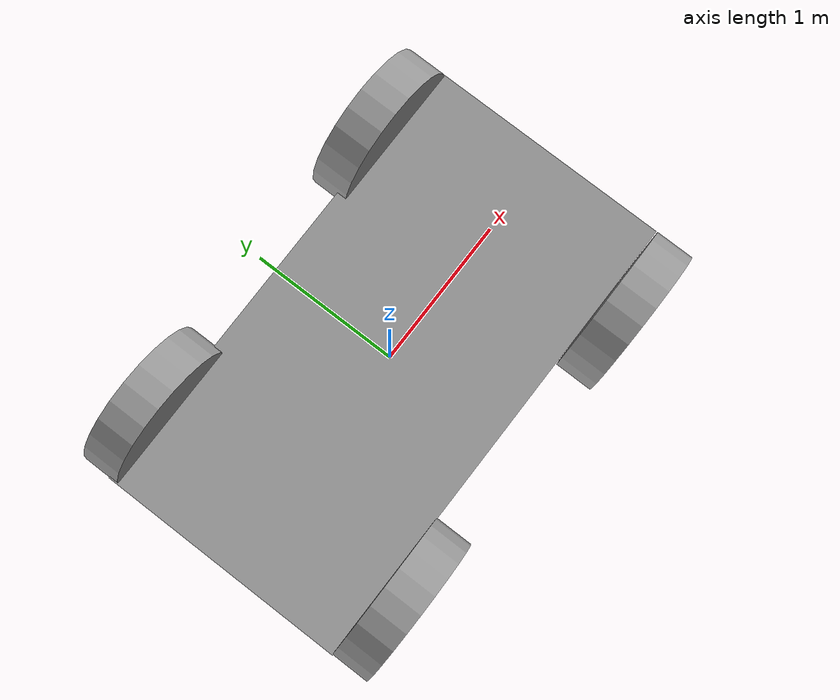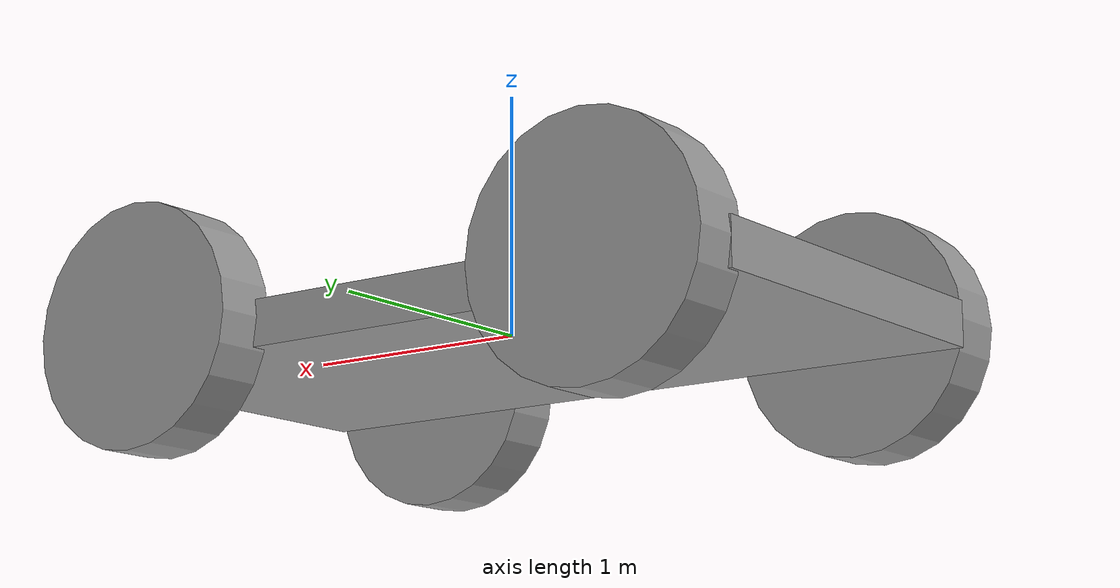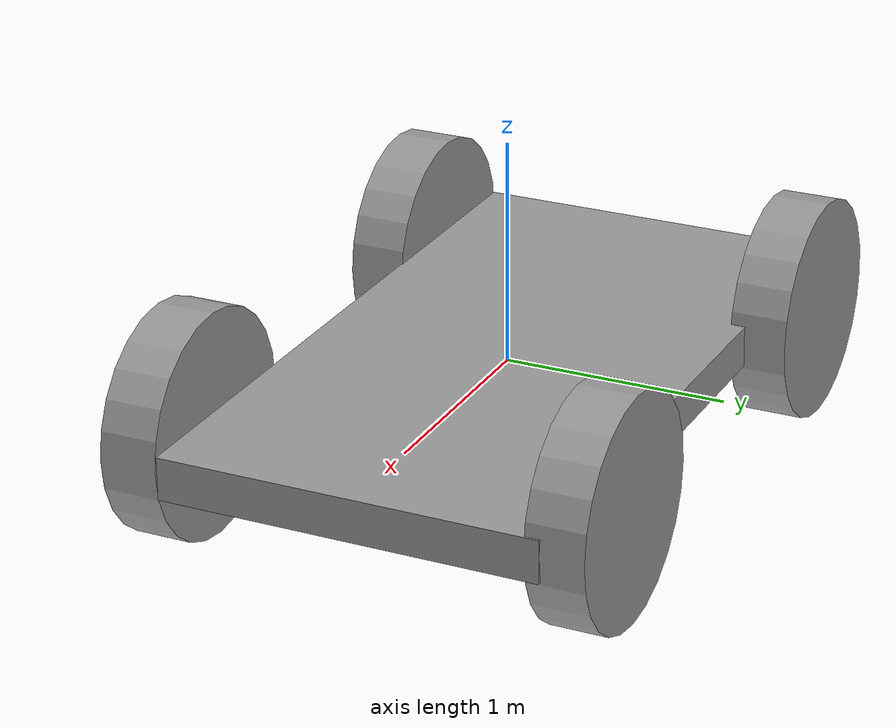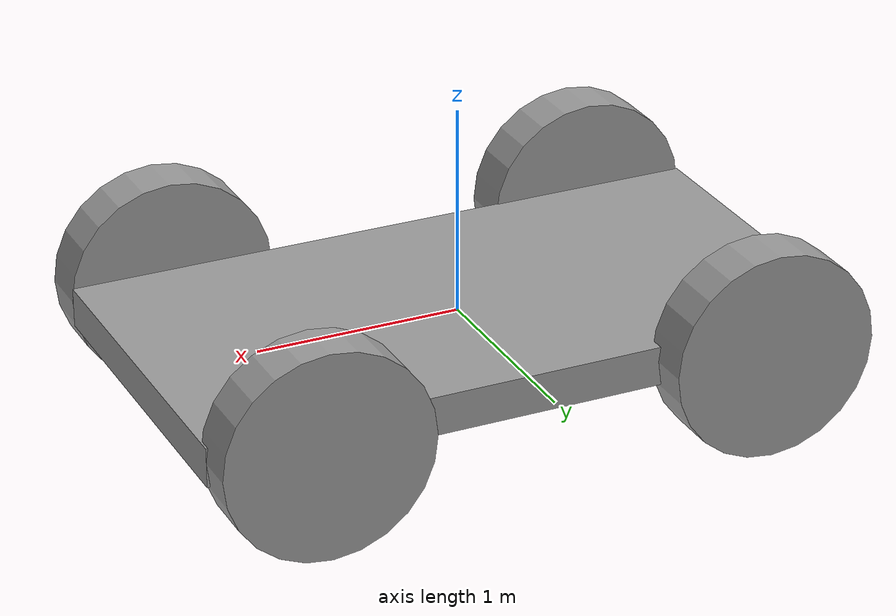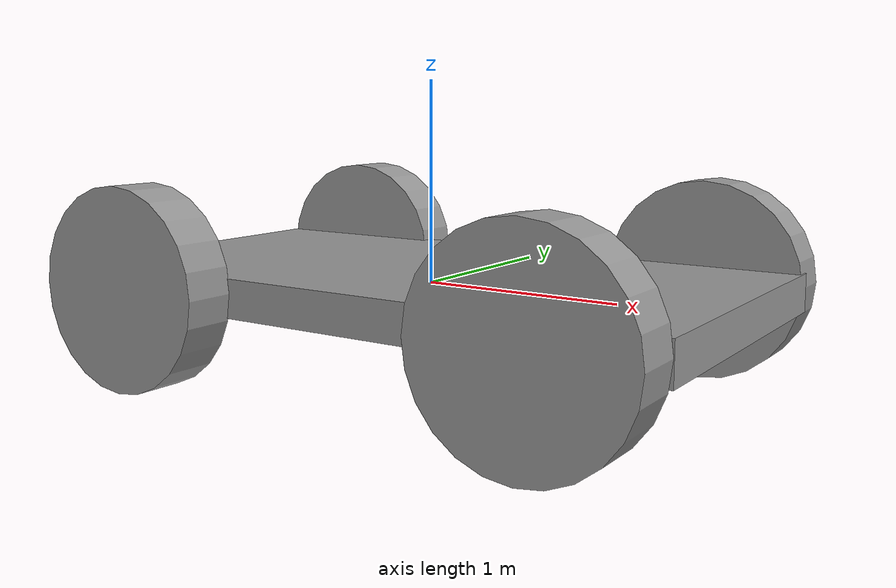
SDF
<?xml version='1.0'?>
<sdf version='1.7'>
  <model name='AC_TestModel_2'>
    <link name='link_0'>
      <inertial>
        <mass>1.01001</mass>
        <inertia>
          <ixx>0.2398</ixx>
          <ixy>0</ixy>
          <ixz>0</ixz>
          <iyy>0.853078</iyy>
          <iyz>0</iyz>
          <izz>1.08683</izz>
        </inertia>
        <pose>0 0 0 0 -0 0</pose>
      </inertial>
      <pose>1e-06 0.026607 -0.018103 0 -0 0</pose>
      <visual name='visual'>
        <pose>0 0 0 0 -0 0</pose>
        <geometry>
          <box>
            <size>3.17798 1.67725 0.189484</size>
          </box>
        </geometry>
        <material>
          <lighting>1</lighting>
          <script>
            <uri>file://media/materials/scripts/gazebo.material</uri>
            <name>Gazebo/Grey</name>
          </script>
          <shader type='pixel'/>
          <emissive>0 0 0 1</emissive>
        </material>
        <transparency>0</transparency>
        <cast_shadows>1</cast_shadows>
      </visual>
      <collision name='collision'>
        <laser_retro>0</laser_retro>
        <max_contacts>10</max_contacts>
        <pose>0 0 0 0 -0 0</pose>
        <geometry>
          <box>
            <size>3.17798 1.67725 0.189484</size>
          </box>
        </geometry>
        <surface>
          <friction>
            <ode>
              <mu>1</mu>
              <mu2>1</mu2>
              <fdir1>0 0 0</fdir1>
              <slip1>0</slip1>
              <slip2>0</slip2>
            </ode>
            <torsional>
              <coefficient>1</coefficient>
              <patch_radius>0</patch_radius>
              <surface_radius>0</surface_radius>
              <use_patch_radius>1</use_patch_radius>
              <ode>
                <slip>0</slip>
              </ode>
            </torsional>
          </friction>
          <bounce>
            <restitution_coefficient>0</restitution_coefficient>
            <threshold>1e+06</threshold>
          </bounce>
          <contact>
            <collide_without_contact>0</collide_without_contact>
            <collide_without_contact_bitmask>1</collide_without_contact_bitmask>
            <collide_bitmask>1</collide_bitmask>
            <ode>
              <soft_cfm>0</soft_cfm>
              <soft_erp>0.2</soft_erp>
              <kp>1e+13</kp>
              <kd>1</kd>
              <max_vel>0.01</max_vel>
              <min_depth>0</min_depth>
            </ode>
            <bullet>
              <split_impulse>1</split_impulse>
              <split_impulse_penetration_threshold>-0.01</split_impulse_penetration_threshold>
              <soft_cfm>0</soft_cfm>
              <soft_erp>0.2</soft_erp>
              <kp>1e+13</kp>
              <kd>1</kd>
            </bullet>
          </contact>
        </surface>
      </collision>
    </link>
    <link name='link_1'>
      <inertial>
        <mass>0.253765</mass>
        <inertia>
          <ixx>0.0172222</ixx>
          <ixy>0</ixy>
          <ixz>0</ixz>
          <iyy>0.0172222</iyy>
          <iyz>0</iyz>
          <izz>0.0317207</izz>
        </inertia>
        <pose>0 0 0 0 -0 0</pose>
      </inertial>
      <pose>1.08899 -0.946693 0.004526 -1.5708 0 0</pose>
      <visual name='visual'>
        <pose>0 0 0 0 -0 0</pose>
        <geometry>
          <cylinder>
            <radius>0.5</radius>
            <length>0.253767</length>
          </cylinder>
        </geometry>
        <material>
          <lighting>1</lighting>
          <script>
            <uri>file://media/materials/scripts/gazebo.material</uri>
            <name>Gazebo/Grey</name>
          </script>
          <shader type='pixel'/>
          <emissive>0 0 0 1</emissive>
        </material>
        <transparency>0</transparency>
        <cast_shadows>1</cast_shadows>
      </visual>
      <collision name='collision'>
        <laser_retro>0</laser_retro>
        <max_contacts>10</max_contacts>
        <pose>0 0 0 0 -0 0</pose>
        <geometry>
          <cylinder>
            <radius>0.5</radius>
            <length>0.253767</length>
          </cylinder>
        </geometry>
        <surface>
          <friction>
            <ode>
              <mu>1</mu>
              <mu2>1</mu2>
              <fdir1>0 0 0</fdir1>
              <slip1>0</slip1>
              <slip2>0</slip2>
            </ode>
            <torsional>
              <coefficient>1</coefficient>
              <patch_radius>0</patch_radius>
              <surface_radius>0</surface_radius>
              <use_patch_radius>1</use_patch_radius>
              <ode>
                <slip>0</slip>
              </ode>
            </torsional>
          </friction>
          <bounce>
            <restitution_coefficient>0</restitution_coefficient>
            <threshold>1e+06</threshold>
          </bounce>
          <contact>
            <collide_without_contact>0</collide_without_contact>
            <collide_without_contact_bitmask>1</collide_without_contact_bitmask>
            <collide_bitmask>1</collide_bitmask>
            <ode>
              <soft_cfm>0</soft_cfm>
              <soft_erp>0.2</soft_erp>
              <kp>1e+13</kp>
              <kd>1</kd>
              <max_vel>0.01</max_vel>
              <min_depth>0</min_depth>
            </ode>
            <bullet>
              <split_impulse>1</split_impulse>
              <split_impulse_penetration_threshold>-0.01</split_impulse_penetration_threshold>
              <soft_cfm>0</soft_cfm>
              <soft_erp>0.2</soft_erp>
              <kp>1e+13</kp>
              <kd>1</kd>
            </bullet>
          </contact>
        </surface>
      </collision>
    </link>
    <link name='link_1_clone'>
      <inertial>
        <mass>0.253765</mass>
        <inertia>
          <ixx>0.0172222</ixx>
          <ixy>0</ixy>
          <ixz>0</ixz>
          <iyy>0.0172222</iyy>
          <iyz>0</iyz>
          <izz>0.0317207</izz>
        </inertia>
        <pose>0 0 0 0 -0 0</pose>
      </inertial>
      <pose>1.08899 0.92683 0.004526 -1.5708 0 0</pose>
      <visual name='visual'>
        <pose>0 0 0 0 -0 0</pose>
        <geometry>
          <cylinder>
            <radius>0.5</radius>
            <length>0.253767</length>
          </cylinder>
        </geometry>
        <material>
          <lighting>1</lighting>
          <script>
            <uri>file://media/materials/scripts/gazebo.material</uri>
            <name>Gazebo/Grey</name>
          </script>
          <shader type='pixel'/>
          <emissive>0 0 0 1</emissive>
        </material>
        <transparency>0</transparency>
        <cast_shadows>1</cast_shadows>
      </visual>
      <collision name='collision'>
        <laser_retro>0</laser_retro>
        <max_contacts>10</max_contacts>
        <pose>0 0 0 0 -0 0</pose>
        <geometry>
          <cylinder>
            <radius>0.5</radius>
            <length>0.253767</length>
          </cylinder>
        </geometry>
        <surface>
          <friction>
            <ode>
              <mu>1</mu>
              <mu2>1</mu2>
              <fdir1>0 0 0</fdir1>
              <slip1>0</slip1>
              <slip2>0</slip2>
            </ode>
            <torsional>
              <coefficient>1</coefficient>
              <patch_radius>0</patch_radius>
              <surface_radius>0</surface_radius>
              <use_patch_radius>1</use_patch_radius>
              <ode>
                <slip>0</slip>
              </ode>
            </torsional>
          </friction>
          <bounce>
            <restitution_coefficient>0</restitution_coefficient>
            <threshold>1e+06</threshold>
          </bounce>
          <contact>
            <collide_without_contact>0</collide_without_contact>
            <collide_without_contact_bitmask>1</collide_without_contact_bitmask>
            <collide_bitmask>1</collide_bitmask>
            <ode>
              <soft_cfm>0</soft_cfm>
              <soft_erp>0.2</soft_erp>
              <kp>1e+13</kp>
              <kd>1</kd>
              <max_vel>0.01</max_vel>
              <min_depth>0</min_depth>
            </ode>
            <bullet>
              <split_impulse>1</split_impulse>
              <split_impulse_penetration_threshold>-0.01</split_impulse_penetration_threshold>
              <soft_cfm>0</soft_cfm>
              <soft_erp>0.2</soft_erp>
              <kp>1e+13</kp>
              <kd>1</kd>
            </bullet>
          </contact>
        </surface>
      </collision>
    </link>
    <link name='link_1_clone_0'>
      <inertial>
        <mass>0.253765</mass>
        <inertia>
          <ixx>0.0172222</ixx>
          <ixy>0</ixy>
          <ixz>0</ixz>
          <iyy>0.0172222</iyy>
          <iyz>0</iyz>
          <izz>0.0317207</izz>
        </inertia>
        <pose>0 0 0 0 -0 0</pose>
      </inertial>
      <pose>-1.08899 -0.933578 0.004526 -1.5708 0 0</pose>
      <visual name='visual'>
        <pose>0 0 0 0 -0 0</pose>
        <geometry>
          <cylinder>
            <radius>0.5</radius>
            <length>0.253767</length>
          </cylinder>
        </geometry>
        <material>
          <lighting>1</lighting>
          <script>
            <uri>file://media/materials/scripts/gazebo.material</uri>
            <name>Gazebo/Grey</name>
          </script>
          <shader type='pixel'/>
          <emissive>0 0 0 1</emissive>
        </material>
        <transparency>0</transparency>
        <cast_shadows>1</cast_shadows>
      </visual>
      <collision name='collision'>
        <laser_retro>0</laser_retro>
        <max_contacts>10</max_contacts>
        <pose>0 0 0 0 -0 0</pose>
        <geometry>
          <cylinder>
            <radius>0.5</radius>
            <length>0.253767</length>
          </cylinder>
        </geometry>
        <surface>
          <friction>
            <ode>
              <mu>1</mu>
              <mu2>1</mu2>
              <fdir1>0 0 0</fdir1>
              <slip1>0</slip1>
              <slip2>0</slip2>
            </ode>
            <torsional>
              <coefficient>1</coefficient>
              <patch_radius>0</patch_radius>
              <surface_radius>0</surface_radius>
              <use_patch_radius>1</use_patch_radius>
              <ode>
                <slip>0</slip>
              </ode>
            </torsional>
          </friction>
          <bounce>
            <restitution_coefficient>0</restitution_coefficient>
            <threshold>1e+06</threshold>
          </bounce>
          <contact>
            <collide_without_contact>0</collide_without_contact>
            <collide_without_contact_bitmask>1</collide_without_contact_bitmask>
            <collide_bitmask>1</collide_bitmask>
            <ode>
              <soft_cfm>0</soft_cfm>
              <soft_erp>0.2</soft_erp>
              <kp>1e+13</kp>
              <kd>1</kd>
              <max_vel>0.01</max_vel>
              <min_depth>0</min_depth>
            </ode>
            <bullet>
              <split_impulse>1</split_impulse>
              <split_impulse_penetration_threshold>-0.01</split_impulse_penetration_threshold>
              <soft_cfm>0</soft_cfm>
              <soft_erp>0.2</soft_erp>
              <kp>1e+13</kp>
              <kd>1</kd>
            </bullet>
          </contact>
        </surface>
      </collision>
    </link>
    <link name='link_1_clone_1'>
      <inertial>
        <mass>0.253765</mass>
        <inertia>
          <ixx>0.0172222</ixx>
          <ixy>0</ixy>
          <ixz>0</ixz>
          <iyy>0.0172222</iyy>
          <iyz>0</iyz>
          <izz>0.0317207</izz>
        </inertia>
        <pose>0 0 0 0 -0 0</pose>
      </inertial>
      <pose>-1.08899 0.92683 0.004526 -1.5708 0 0</pose>
      <visual name='visual'>
        <pose>0 0 0 0 -0 0</pose>
        <geometry>
          <cylinder>
            <radius>0.5</radius>
            <length>0.253767</length>
          </cylinder>
        </geometry>
        <material>
          <lighting>1</lighting>
          <script>
            <uri>file://media/materials/scripts/gazebo.material</uri>
            <name>Gazebo/Grey</name>
          </script>
          <shader type='pixel'/>
          <emissive>0 0 0 1</emissive>
        </material>
        <transparency>0</transparency>
        <cast_shadows>1</cast_shadows>
      </visual>
      <collision name='collision'>
        <laser_retro>0</laser_retro>
        <max_contacts>10</max_contacts>
        <pose>0 0 0 0 -0 0</pose>
        <geometry>
          <cylinder>
            <radius>0.5</radius>
            <length>0.253767</length>
          </cylinder>
        </geometry>
        <surface>
          <friction>
            <ode>
              <mu>1</mu>
              <mu2>1</mu2>
              <fdir1>0 0 0</fdir1>
              <slip1>0</slip1>
              <slip2>0</slip2>
            </ode>
            <torsional>
              <coefficient>1</coefficient>
              <patch_radius>0</patch_radius>
              <surface_radius>0</surface_radius>
              <use_patch_radius>1</use_patch_radius>
              <ode>
                <slip>0</slip>
              </ode>
            </torsional>
          </friction>
          <bounce>
            <restitution_coefficient>0</restitution_coefficient>
            <threshold>1e+06</threshold>
          </bounce>
          <contact>
            <collide_without_contact>0</collide_without_contact>
            <collide_without_contact_bitmask>1</collide_without_contact_bitmask>
            <collide_bitmask>1</collide_bitmask>
            <ode>
              <soft_cfm>0</soft_cfm>
              <soft_erp>0.2</soft_erp>
              <kp>1e+13</kp>
              <kd>1</kd>
              <max_vel>0.01</max_vel>
              <min_depth>0</min_depth>
            </ode>
            <bullet>
              <split_impulse>1</split_impulse>
              <split_impulse_penetration_threshold>-0.01</split_impulse_penetration_threshold>
              <soft_cfm>0</soft_cfm>
              <soft_erp>0.2</soft_erp>
              <kp>1e+13</kp>
              <kd>1</kd>
            </bullet>
          </contact>
        </surface>
      </collision>
    </link>
    <joint name='link_0_JOINT_0' type='revolute'>
      <parent>link_0</parent>
      <child>link_1</child>
      <pose>0 0 0 0 -0 0</pose>
      <axis>
        <xyz>1 0 0</xyz>
        <limit>
          <lower>-1.79769e+308</lower>
          <upper>1.79769e+308</upper>
          <effort>-1</effort>
          <velocity>-1</velocity>
        </limit>
        <dynamics>
          <spring_reference>0</spring_reference>
          <spring_stiffness>0</spring_stiffness>
          <damping>0</damping>
        </dynamics>
      </axis>
      <physics>
        <ode>
          <limit>
            <cfm>0</cfm>
            <erp>0.2</erp>
          </limit>
          <suspension>
            <cfm>0</cfm>
            <erp>0.2</erp>
          </suspension>
        </ode>
      </physics>
    </joint>
    <joint name='link_0_JOINT_1' type='revolute'>
      <parent>link_0</parent>
      <child>link_1_clone</child>
      <pose>0 0 0 0 -0 0</pose>
      <axis>
        <xyz>1 0 0</xyz>
        <limit>
          <lower>-1.79769e+308</lower>
          <upper>1.79769e+308</upper>
          <effort>-1</effort>
          <velocity>-1</velocity>
        </limit>
        <dynamics>
          <spring_reference>0</spring_reference>
          <spring_stiffness>0</spring_stiffness>
          <damping>0</damping>
        </dynamics>
      </axis>
      <physics>
        <ode>
          <limit>
            <cfm>0</cfm>
            <erp>0.2</erp>
          </limit>
          <suspension>
            <cfm>0</cfm>
            <erp>0.2</erp>
          </suspension>
        </ode>
      </physics>
    </joint>
    <joint name='link_0_JOINT_2' type='revolute'>
      <parent>link_0</parent>
      <child>link_1_clone_0</child>
      <pose>0 0 0 0 -0 0</pose>
      <axis>
        <xyz>1 0 0</xyz>
        <limit>
          <lower>-1.79769e+308</lower>
          <upper>1.79769e+308</upper>
          <effort>-1</effort>
          <velocity>-1</velocity>
        </limit>
        <dynamics>
          <spring_reference>0</spring_reference>
          <spring_stiffness>0</spring_stiffness>
          <damping>0</damping>
        </dynamics>
      </axis>
      <physics>
        <ode>
          <limit>
            <cfm>0</cfm>
            <erp>0.2</erp>
          </limit>
          <suspension>
            <cfm>0</cfm>
            <erp>0.2</erp>
          </suspension>
        </ode>
      </physics>
    </joint>
    <joint name='link_0_JOINT_3' type='revolute'>
      <parent>link_0</parent>
      <child>link_1_clone_1</child>
      <pose>0 0 0 0 -0 0</pose>
      <axis>
        <xyz>1 0 0</xyz>
        <limit>
          <lower>-1.79769e+308</lower>
          <upper>1.79769e+308</upper>
          <effort>-1</effort>
          <velocity>-1</velocity>
        </limit>
        <dynamics>
          <spring_reference>0</spring_reference>
          <spring_stiffness>0</spring_stiffness>
          <damping>0</damping>
        </dynamics>
      </axis>
      <physics>
        <ode>
          <limit>
            <cfm>0</cfm>
            <erp>0.2</erp>
          </limit>
          <suspension>
            <cfm>0</cfm>
            <erp>0.2</erp>
          </suspension>
        </ode>
      </physics>
    </joint>
    <static>0</static>
    <allow_auto_disable>1</allow_auto_disable>
  </model>
</sdf>
